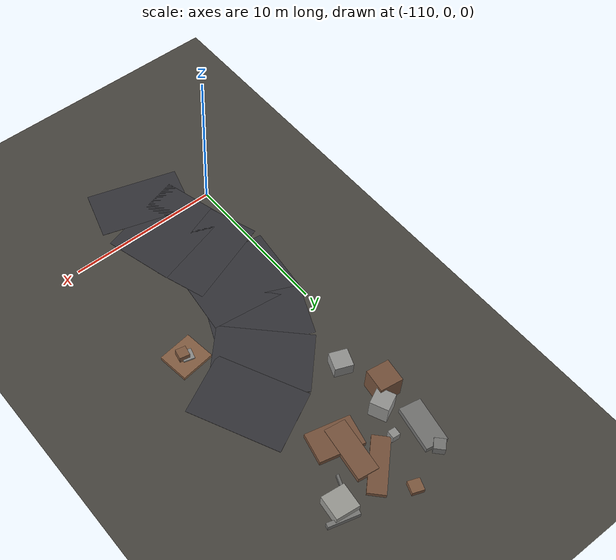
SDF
<sdf version="1.6">
 <world name="navitas_arena">
  <model name="ground_plane">
   <static>true</static>
   <link name="link">
    <collision name="collision">
     <geometry><plane><normal>0 0 1</normal><size>400 400</size></plane></geometry>
     <surface><friction><ode><mu>0.820</mu><mu2>0.820</mu2></ode></friction></surface>
    </collision>
    <visual name="visual">
     <cast_shadows>false</cast_shadows>
     <geometry><plane><normal>0 0 1</normal><size>400 400</size></plane></geometry>
     <material><ambient>0.280 0.270 0.250 1</ambient><diffuse>0.280 0.270 0.250 1</diffuse></material>
    </visual>
   </link>
  </model>
  <model name="road_kolay_1_10">
   <static>true</static>
   <pose>-106.165 -2.167 0.040 0 0 1.282</pose>
   <link name="link">
    <collision name="col"><geometry><box><size>3.334 6.000 0.020</size></box></geometry></collision>
    <visual name="vis">
     <geometry><box><size>3.334 6.000 0.020</size></box></geometry>
     <material><ambient>0.20 0.20 0.22 1</ambient><diffuse>0.20 0.20 0.22 1</diffuse></material>
    </visual>
   </link>
  </model>
  <model name="road_kolay_1_11">
   <static>true</static>
   <pose>-106.307 0.750 0.040 0 0 1.844</pose>
   <link name="link">
    <collision name="col"><geometry><box><size>4.535 6.000 0.020</size></box></geometry></collision>
    <visual name="vis">
     <geometry><box><size>4.535 6.000 0.020</size></box></geometry>
     <material><ambient>0.20 0.20 0.22 1</ambient><diffuse>0.20 0.20 0.22 1</diffuse></material>
    </visual>
   </link>
  </model>
  <model name="road_kolay_1_12">
   <static>true</static>
   <pose>-107.200 3.667 0.040 0 0 1.903</pose>
   <link name="link">
    <collision name="col"><geometry><box><size>3.369 6.000 0.020</size></box></geometry></collision>
    <visual name="vis">
     <geometry><box><size>3.369 6.000 0.020</size></box></geometry>
     <material><ambient>0.20 0.20 0.22 1</ambient><diffuse>0.20 0.20 0.22 1</diffuse></material>
    </visual>
   </link>
  </model>
  <model name="road_kolay_1_13">
   <static>true</static>
   <pose>-107.395 6.630 0.040 0 0 1.455</pose>
   <link name="link">
    <collision name="col"><geometry><box><size>4.517 6.000 0.020</size></box></geometry></collision>
    <visual name="vis">
     <geometry><box><size>4.517 6.000 0.020</size></box></geometry>
     <material><ambient>0.20 0.20 0.22 1</ambient><diffuse>0.20 0.20 0.22 1</diffuse></material>
    </visual>
   </link>
  </model>
  <model name="road_kolay_1_14">
   <static>true</static>
   <pose>-106.656 9.639 0.040 0 0 1.158</pose>
   <link name="link">
    <collision name="col"><geometry><box><size>3.548 6.000 0.020</size></box></geometry></collision>
    <visual name="vis">
     <geometry><box><size>3.548 6.000 0.020</size></box></geometry>
     <material><ambient>0.20 0.20 0.22 1</ambient><diffuse>0.20 0.20 0.22 1</diffuse></material>
    </visual>
   </link>
  </model>
  <model name="road_kolay_1_15">
   <static>true</static>
   <pose>-105.067 11.926 0.040 0 0 0.793</pose>
   <link name="link">
    <collision name="col"><geometry><box><size>3.916 6.000 0.020</size></box></geometry></collision>
    <visual name="vis">
     <geometry><box><size>3.916 6.000 0.020</size></box></geometry>
     <material><ambient>0.20 0.20 0.22 1</ambient><diffuse>0.20 0.20 0.22 1</diffuse></material>
    </visual>
   </link>
  </model>
  <model name="road_kolay_1_16">
   <static>true</static>
   <pose>-102.551 13.717 0.040 0 0 0.457</pose>
   <link name="link">
    <collision name="col"><geometry><box><size>4.149 6.000 0.020</size></box></geometry></collision>
    <visual name="vis">
     <geometry><box><size>4.149 6.000 0.020</size></box></geometry>
     <material><ambient>0.20 0.20 0.22 1</ambient><diffuse>0.20 0.20 0.22 1</diffuse></material>
    </visual>
   </link>
  </model>
  <model name="deb_kolay_10">
   <static>true</static>
   <pose>-101.617 9.143 0.168 0 0 2.882</pose>
   <link name="link">
    <collision name="col"><geometry><box><size>0.705 0.705 0.336</size></box></geometry></collision>
    <visual name="vis">
     <geometry><box><size>0.705 0.705 0.336</size></box></geometry>
     <material><ambient>0.55 0.55 0.54 1</ambient><diffuse>0.55 0.55 0.54 1</diffuse></material>
    </visual>
   </link>
  </model>
  <model name="deb_kolay_31">
   <static>true</static>
   <pose>-102.434 21.828 0.404 0 0 1.457</pose>
   <link name="link">
    <collision name="col"><geometry><box><size>1.532 1.532 0.808</size></box></geometry></collision>
    <visual name="vis">
     <geometry><box><size>1.532 1.532 0.808</size></box></geometry>
     <material><ambient>0.60 0.60 0.58 1</ambient><diffuse>0.60 0.60 0.58 1</diffuse></material>
    </visual>
   </link>
  </model>
  <model name="deb_kolay_45">
   <static>true</static>
   <pose>-108.210 18.779 0.678 0 0 2.006</pose>
   <link name="link">
    <collision name="col"><geometry><box><size>1.163 1.163 1.357</size></box></geometry></collision>
    <visual name="vis">
     <geometry><box><size>1.163 1.163 1.357</size></box></geometry>
     <material><ambient>0.58 0.58 0.57 1</ambient><diffuse>0.58 0.58 0.57 1</diffuse></material>
    </visual>
   </link>
  </model>
  <model name="deb_kolay_52">
   <static>true</static>
   <pose>-101.394 8.987 0.337 0 0 2.942</pose>
   <link name="link">
    <collision name="col"><geometry><box><size>0.658 0.658 0.674</size></box></geometry></collision>
    <visual name="vis">
     <geometry><box><size>0.658 0.658 0.674</size></box></geometry>
     <material><ambient>0.50 0.35 0.25 1</ambient><diffuse>0.50 0.35 0.25 1</diffuse></material>
    </visual>
   </link>
  </model>
  <model name="deb_kolay_61">
   <static>true</static>
   <pose>-103.114 21.441 0.138 0 0 1.202</pose>
   <link name="link">
    <collision name="col"><geometry><box><size>2.296 0.162 0.275</size></box></geometry></collision>
    <visual name="vis">
     <geometry><box><size>2.296 0.162 0.275</size></box></geometry>
     <material><ambient>0.42 0.42 0.41 1</ambient><diffuse>0.42 0.42 0.41 1</diffuse></material>
    </visual>
   </link>
  </model>
  <model name="deb_kolay_69">
   <static>true</static>
   <pose>-105.677 18.545 0.170 0 0 0.152</pose>
   <link name="link">
    <collision name="col"><geometry><box><size>0.575 0.575 0.341</size></box></geometry></collision>
    <visual name="vis">
     <geometry><box><size>0.575 0.575 0.341</size></box></geometry>
     <material><ambient>0.43 0.43 0.42 1</ambient><diffuse>0.43 0.43 0.42 1</diffuse></material>
    </visual>
   </link>
  </model>
  <model name="deb_kolay_73">
   <static>true</static>
   <pose>-105.722 21.342 0.145 0 0 0.764</pose>
   <link name="link">
    <collision name="col"><geometry><box><size>3.577 1.127 0.290</size></box></geometry></collision>
    <visual name="vis">
     <geometry><box><size>3.577 1.127 0.290</size></box></geometry>
     <material><ambient>0.46 0.32 0.23 1</ambient><diffuse>0.46 0.32 0.23 1</diffuse></material>
    </visual>
   </link>
  </model>
  <model name="deb_kolay_74">
   <static>true</static>
   <pose>-107.592 20.485 0.276 0 0 1.469</pose>
   <link name="link">
    <collision name="col"><geometry><box><size>0.509 0.509 0.552</size></box></geometry></collision>
    <visual name="vis">
     <geometry><box><size>0.509 0.509 0.552</size></box></geometry>
     <material><ambient>0.56 0.56 0.55 1</ambient><diffuse>0.56 0.56 0.55 1</diffuse></material>
    </visual>
   </link>
  </model>
  <model name="deb_kolay_75">
   <static>true</static>
   <pose>-106.447 23.536 0.166 0 0 2.788</pose>
   <link name="link">
    <collision name="col"><geometry><box><size>0.764 0.764 0.333</size></box></geometry></collision>
    <visual name="vis">
     <geometry><box><size>0.764 0.764 0.333</size></box></geometry>
     <material><ambient>0.50 0.35 0.25 1</ambient><diffuse>0.50 0.35 0.25 1</diffuse></material>
    </visual>
   </link>
  </model>
  <model name="deb_kolay_80">
   <static>true</static>
   <pose>-109.189 17.796 0.794 0 0 1.437</pose>
   <link name="link">
    <collision name="col"><geometry><box><size>1.492 1.492 1.588</size></box></geometry></collision>
    <visual name="vis">
     <geometry><box><size>1.492 1.492 1.588</size></box></geometry>
     <material><ambient>0.46 0.32 0.23 1</ambient><diffuse>0.46 0.32 0.23 1</diffuse></material>
    </visual>
   </link>
  </model>
  <model name="deb_kolay_88">
   <static>true</static>
   <pose>-109.129 22.574 0.283 0 0 0.769</pose>
   <link name="link">
    <collision name="col"><geometry><box><size>0.697 0.697 0.566</size></box></geometry></collision>
    <visual name="vis">
     <geometry><box><size>0.697 0.697 0.566</size></box></geometry>
     <material><ambient>0.46 0.46 0.45 1</ambient><diffuse>0.46 0.46 0.45 1</diffuse></material>
    </visual>
   </link>
  </model>
  <model name="deb_kolay_90">
   <static>true</static>
   <pose>-104.841 18.642 0.171 0 0 2.913</pose>
   <link name="link">
    <collision name="col"><geometry><box><size>2.911 1.933 0.343</size></box></geometry></collision>
    <visual name="vis">
     <geometry><box><size>2.911 1.933 0.343</size></box></geometry>
     <material><ambient>0.46 0.32 0.23 1</ambient><diffuse>0.46 0.32 0.23 1</diffuse></material>
    </visual>
   </link>
  </model>
  <model name="deb_kolay_92">
   <static>true</static>
   <pose>-105.123 19.707 0.183 0 0 1.434</pose>
   <link name="link">
    <collision name="col"><geometry><box><size>3.490 1.378 0.367</size></box></geometry></collision>
    <visual name="vis">
     <geometry><box><size>3.490 1.378 0.367</size></box></geometry>
     <material><ambient>0.47 0.33 0.24 1</ambient><diffuse>0.47 0.33 0.24 1</diffuse></material>
    </visual>
   </link>
  </model>
  <model name="deb_kolay_109">
   <static>true</static>
   <pose>-108.282 15.158 0.430 0 0 1.199</pose>
   <link name="link">
    <collision name="col"><geometry><box><size>1.168 1.168 0.859</size></box></geometry></collision>
    <visual name="vis">
     <geometry><box><size>1.168 1.168 0.859</size></box></geometry>
     <material><ambient>0.58 0.58 0.57 1</ambient><diffuse>0.58 0.58 0.57 1</diffuse></material>
    </visual>
   </link>
  </model>
  <model name="deb_kolay_117">
   <static>true</static>
   <pose>-101.555 9.120 0.115 0 0 0.129</pose>
   <link name="link">
    <collision name="col"><geometry><box><size>2.219 1.997 0.231</size></box></geometry></collision>
    <visual name="vis">
     <geometry><box><size>2.219 1.997 0.231</size></box></geometry>
     <material><ambient>0.52 0.37 0.26 1</ambient><diffuse>0.52 0.37 0.26 1</diffuse></material>
    </visual>
   </link>
  </model>
  <model name="deb_kolay_132">
   <static>true</static>
   <pose>-109.347 21.035 0.195 0 0 1.385</pose>
   <link name="link">
    <collision name="col"><geometry><box><size>2.880 1.421 0.389</size></box></geometry></collision>
    <visual name="vis">
     <geometry><box><size>2.880 1.421 0.389</size></box></geometry>
     <material><ambient>0.45 0.45 0.44 1</ambient><diffuse>0.45 0.45 0.44 1</diffuse></material>
    </visual>
   </link>
  </model>
  <model name="deb_kolay_148">
   <static>true</static>
   <pose>-102.066 22.547 0.181 0 0 2.882</pose>
   <link name="link">
    <collision name="col"><geometry><box><size>1.989 0.269 0.363</size></box></geometry></collision>
    <visual name="vis">
     <geometry><box><size>1.989 0.269 0.363</size></box></geometry>
     <material><ambient>0.47 0.47 0.46 1</ambient><diffuse>0.47 0.47 0.46 1</diffuse></material>
    </visual>
   </link>
  </model>
 </world>
</sdf>
